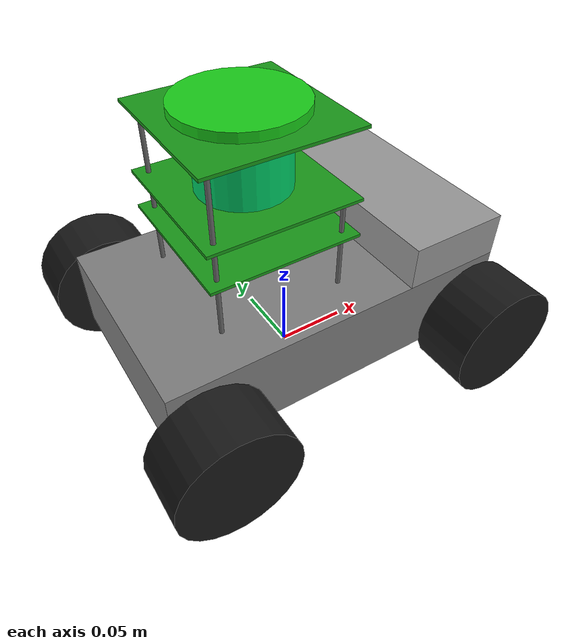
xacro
<?xml version="1.0"?>
<robot xmlns:xacro="http://www.ros.org/wiki/xacro" name="volt_runner_mecanum">

  <!-- ===== includes ===== -->
  <xacro:include filename="$(find volt_runner_description)/urdf/properties/mecanum_properties.urdf.xacro"/>
  <xacro:include filename="$(find volt_runner_description)/urdf/mech/base.urdf.xacro"/>
  <xacro:include filename="$(find volt_runner_description)/urdf/mech/wheel.urdf.xacro"/>
  <xacro:include filename="$(find volt_runner_description)/urdf/sensors/laser.urdf.xacro"/>
  <xacro:include filename="$(find volt_runner_description)/urdf/sensors/sender.urdf.xacro"/>
  <xacro:include filename="$(find volt_runner_description)/urdf/sensors/plugins.urdf.xacro"/>
  <xacro:include filename="$(find volt_runner_description)/urdf/controllers/omni_drive.urdf.xacro"/>

  <!-- ====== 라이다 전면 박스 (기존 그대로 유지) ====== -->
  <xacro:property name="front_box_len" value="0.07"/>
  <xacro:property name="front_box_wid" value="0.145"/>
  <xacro:property name="front_box_hei" value="0.03"/>
  <xacro:property name="front_box_cx"  value="${ base_length/2.0 - front_box_len/2.0 }"/>
  <xacro:property name="front_box_cz"  value="${ base_height/2.0 + front_box_hei/2.0 }"/>

  <joint name="front_box_joint" type="fixed">
    <parent link="base_link"/>
    <child link="front_box_link"/>
    <origin xyz="${front_box_cx} 0 ${front_box_cz}" rpy="0 0 0"/>
  </joint>

  <link name="front_box_link">
    <visual>
      <geometry>
        <box size="${front_box_len} ${front_box_wid} ${front_box_hei}"/>
      </geometry>
      <material name="FrontBoxGrey">
        <color rgba="0.6 0.6 0.6 1"/>
      </material>
    </visual>
    <inertial>
      <mass value="0.1"/>
      <inertia ixx="0.001" ixy="0" ixz="0"
               iyy="0.001" iyz="0" izz="0.001"/>
    </inertial>
  </link>

  <!-- ====== 바디 / 휠 (joint 이름 원래대로) ====== -->
  <xacro:base
    length="${base_length}"
    width="${base_width}"
    height="${base_height}"
    mass="${base_mass}"
    wheel_radius="${wheel_radius}"
    mesh_file=""/>

  <xacro:mecanum_wheel name="front_left"  parent="base_link"
      radius="${wheel_radius}" width="${wheel_width}" mass="${wheel_mass}"
      pos_x="${front_wheel_x}" pos_y="${ wheel_center_y_abs}" pos_z="${base_height/2 - wheel_radius}"/>

  <xacro:mecanum_wheel name="front_right" parent="base_link"
      radius="${wheel_radius}" width="${wheel_width}" mass="${wheel_mass}"
      pos_x="${front_wheel_x}" pos_y="${-wheel_center_y_abs}" pos_z="${base_height/2 - wheel_radius}"/>

  <xacro:mecanum_wheel name="rear_left"   parent="base_link"
      radius="${wheel_radius}" width="${wheel_width}" mass="${wheel_mass}"
      pos_x="${rear_wheel_x}"  pos_y="${ wheel_center_y_abs}" pos_z="${base_height/2 - wheel_radius}"/>

  <xacro:mecanum_wheel name="rear_right"  parent="base_link"
      radius="${wheel_radius}" width="${wheel_width}" mass="${wheel_mass}"
      pos_x="${rear_wheel_x}"  pos_y="${-wheel_center_y_abs}" pos_z="${base_height/2 - wheel_radius}"/>

  <!-- ====== 3층 캐빈 스택 ====== -->
  <xacro:property name="table_len" value="0.10"/>
  <xacro:property name="table_wid" value="0.10"/>
  <xacro:property name="table_thk" value="0.002"/>
  <xacro:property name="leg_rad"   value="0.0015"/>

  <!-- h1: base 상판에서 1층 테이블 상판까지 4cm (유지) -->
  <xacro:property name="h1" value="0.040"/>
  <!-- h2: 1층 상판에서 2층 상판까지 2.5cm (유지) -->
  <xacro:property name="h2" value="0.025"/>
  <!-- h3: 2층 상판에서 3층 상판까지 (기존 6cm → 4cm로 살짝 낮춤) -->
  <xacro:property name="h3" value="0.045"/>

  <!-- 스택의 XY 위치 (기존 rear table 위치) -->
  <xacro:property name="stack_x" value="${ -base_length/2.0 + 0.042 + table_len/2.0 }"/>
  <xacro:property name="stack_y" value="0.0"/>

  <!-- 다리 생성 매크로 -->
  <xacro:macro name="mk_leg" params="name parent xyz len">
    <joint name="${name}_j" type="fixed">
      <parent link="${parent}"/>
      <child  link="${name}_l"/>
      <origin xyz="${xyz}" rpy="0 0 0"/>
    </joint>
    <link name="${name}_l">
      <visual>
        <geometry>
          <cylinder radius="${leg_rad}" length="${len}"/>
        </geometry>
        <material name="LegGray">
          <color rgba="0.4 0.4 0.4 1"/>
        </material>
      </visual>
      <inertial>
        <mass value="0.005"/>
        <inertia ixx="1e-5" ixy="0" ixz="0"
                 iyy="1e-5" iyz="0" izz="1e-5"/>
      </inertial>
    </link>
  </xacro:macro>

  <!-- ===== 1층 캐빈 (table_1) : base 상판에서 +4cm ===== -->
  <joint name="table_1_joint" type="fixed">
    <parent link="base_link"/>
    <child  link="table_1_link"/>
    <origin xyz="${stack_x} ${stack_y} ${base_height/2.0 + h1 - table_thk/2.0}" rpy="0 0 0"/>
  </joint>

  <link name="table_1_link">
    <visual>
      <geometry>
        <box size="${table_len} ${table_wid} ${table_thk}"/>
      </geometry>
      <material name="TableGreen">
        <color rgba="0.1 0.6 0.1 1"/>
      </material>
    </visual>
    <inertial>
      <mass value="0.05"/>
      <inertia ixx="1e-4" ixy="0" ixz="0"
               iyy="1e-4" iyz="0" izz="1e-4"/>
    </inertial>
  </link>

  <xacro:property name="leg1_len" value="${h1 - table_thk}"/>
  <xacro:property name="leg1_z"   value="${base_height/2.0 + leg1_len/2.0}"/>
  <xacro:property name="ldx"      value="${table_len/2.0 - 0.008}"/>
  <xacro:property name="ldy"      value="${table_wid/2.0 - 0.008}"/>

  <!-- 1층 캐빈 다리 4개 (base_link 기준) -->
  <xacro:mk_leg name="leg1_fl" parent="base_link"
                xyz="${stack_x + ldx} ${stack_y + ldy} ${leg1_z}"
                len="${leg1_len}"/>
  <xacro:mk_leg name="leg1_fr" parent="base_link"
                xyz="${stack_x + ldx} ${stack_y - ldy} ${leg1_z}"
                len="${leg1_len}"/>
  <xacro:mk_leg name="leg1_rl" parent="base_link"
                xyz="${stack_x - ldx} ${stack_y + ldy} ${leg1_z}"
                len="${leg1_len}"/>
  <xacro:mk_leg name="leg1_rr" parent="base_link"
                xyz="${stack_x - ldx} ${stack_y - ldy} ${leg1_z}"
                len="${leg1_len}"/>

  <!-- ===== 2층 캐빈 (table_2) : 1층에서 +2.5cm, 이 위에 LiDAR ===== -->
  <joint name="table_2_joint" type="fixed">
    <parent link="table_1_link"/>
    <child  link="table_2_link"/>
    <origin xyz="0 0 ${h2}" rpy="0 0 0"/>
  </joint>

  <link name="table_2_link">
    <visual>
      <geometry>
        <box size="${table_len} ${table_wid} ${table_thk}"/>
      </geometry>
      <material name="TableGreen"/>
    </visual>
    <inertial>
      <mass value="0.05"/>
      <inertia ixx="1e-4" ixy="0" ixz="0"
               iyy="1e-4" iyz="0" izz="1e-4"/>
    </inertial>
  </link>

  <xacro:property name="leg2_len" value="${h2 - table_thk}"/>

  <!-- 2층 캐빈 다리 4개 (1층 기준) -->
  <xacro:mk_leg name="leg2_fl" parent="table_1_link"
                xyz="${ldx} ${ldy} ${h2/2.0}"
                len="${leg2_len}"/>
  <xacro:mk_leg name="leg2_fr" parent="table_1_link"
                xyz="${ldx} ${-ldy} ${h2/2.0}"
                len="${leg2_len}"/>
  <xacro:mk_leg name="leg2_rl" parent="table_1_link"
                xyz="${-ldx} ${ldy} ${h2/2.0}"
                len="${leg2_len}"/>
  <xacro:mk_leg name="leg2_rr" parent="table_1_link"
                xyz="${-ldx} ${-ldy} ${h2/2.0}"
                len="${leg2_len}"/>

  <!-- ===== LiDAR: 2층 캐빈 위 (높이 설정 그대로 유지) ===== -->
  <xacro:laser_2d_g6 frame="base_scan"
                     topic="/scan"
                     rate="10"
                     parent="table_2_link">
    <origin xyz="0 0 ${table_thk/2.0 + 0.025}" rpy="0 0 0"/>
  </xacro:laser_2d_g6>

  <!-- ===== 3층 캐빈 (table_3) : 2층에서 +4cm, 뒤 기둥 2개 + sender ===== -->
  <joint name="table_3_joint" type="fixed">
    <parent link="table_2_link"/>
    <child  link="table_3_link"/>
    <origin xyz="0 0 ${h3}" rpy="0 0 0"/>
  </joint>

  <link name="table_3_link">
    <visual>
      <geometry>
        <box size="${table_len} ${table_wid} ${table_thk}"/>
      </geometry>
      <material name="TableGreen"/>
    </visual>
    <inertial>
      <mass value="0.05"/>
      <inertia ixx="1e-4" ixy="0" ixz="0"
               iyy="1e-4" iyz="0" izz="1e-4"/>
    </inertial>
  </link>

  <xacro:property name="leg3_len" value="${h3 - table_thk}"/>

  <!-- 3층 캐빈 다리: 뒤쪽 2개만 (lidar 뒤 기둥) -->
  <xacro:mk_leg name="leg3_rl" parent="table_2_link"
                xyz="${-ldx} ${ldy} ${h3/2.0}"
                len="${leg3_len}"/>
  <xacro:mk_leg name="leg3_rr" parent="table_2_link"
                xyz="${-ldx} ${-ldy} ${h3/2.0}"
                len="${leg3_len}"/>

  <!-- ===== sender: 3층 캐빈 위 (rear_sender_* 이름 유지) ===== -->
  <xacro:sender_sensor
      parent="table_3_link"
      prefix="rear_sender"
      xyz_origin="0 0 ${table_thk/2.0 + 0.005}"
      rpy_origin="0 0 0"/>

  <!-- ====== 구동 플러그인 (기존 그대로) ====== -->
  <xacro:omni_drive_controller
        wheel_separation="${wheel_base}"
        wheel_base="${2.0 * wheel_center_y_abs}"
        wheel_radius="${wheel_radius}"/>

</robot>

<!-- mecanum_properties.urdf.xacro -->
<robot xmlns:xacro="http://www.ros.org/wiki/xacro">

  <xacro:property name="base_length" value="0.24"/>
  <xacro:property name="base_width"  value="0.145"/>
  <xacro:property name="base_height" value="0.056"/>
  <xacro:property name="base_mass"   value="6.0"/>

  <xacro:property name="wheel_radius" value="0.04"/>
  <xacro:property name="wheel_width"  value="0.04"/>
  <xacro:property name="wheel_mass"   value="0.3"/>

  <xacro:property name="wheel_gap" value="0.004"/>
  <xacro:property name="base_link_z" value="${wheel_radius + base_height/2.0}"/>
  <xacro:property name="wheel_center_y_abs" value="${base_width/2.0 + wheel_gap + wheel_width/2.0}"/>
  <xacro:property name="front_wheel_x" value="${ base_length/2.0 - 0.02 }"/>
  <xacro:property name="rear_wheel_x"  value="${-base_length/2.0 + 0.02 }"/>
  <xacro:property name="wheel_base" value="${front_wheel_x - rear_wheel_x}"/>

  <xacro:property name="base_mesh_file"  value=""/>
  <xacro:property name="wheel_mesh_file" value=""/>

  <xacro:property name="platform_length" value="0.20"/>
  <xacro:property name="platform_width"  value="0.12"/>
  <xacro:property name="platform_thickness" value="0.01"/>

  <xacro:property name="platform_center_z" value="0.07"/>

  <xacro:property name="laser_frame" value="base_scan"/>
  <xacro:property name="laser_topic" value="/scan"/>
  <xacro:property name="laser_rate"  value="20"/>

</robot>

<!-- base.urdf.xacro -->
<robot xmlns:xacro="http://ros.org/wiki/xacro">
  <!-- base 박스: 총 높이 = 2*wheel_radius 가 되도록 자동 오프셋 -->
  <xacro:macro name="base"
               params="length width height mass wheel_radius mesh_file:=''">

    <link name="base_footprint"/>

    <link name="base_link">
      <visual>
        <origin xyz="0 0 0" rpy="0 0 0"/>
        <geometry>
          <xacro:if value="${mesh_file == ''}">
            <box size="${length} ${width} ${height}"/>
          </xacro:if>
          <xacro:unless value="${mesh_file == ''}">
            <mesh filename="${mesh_file}" scale="1 1 1"/>
          </xacro:unless>
        </geometry>
        <material name="grey"><color rgba="0.5 0.5 0.5 1"/></material>
      </visual>

      <collision>
        <origin xyz="0 0 0" rpy="0 0 0"/>
        <geometry><box size="${length} ${width} ${height}"/></geometry>
      </collision>

      <inertial>
        <origin xyz="0 0 0" rpy="0 0 0"/>
        <mass value="${mass}"/>
        <inertia
          ixx="${(mass/12.0) * (width*width + height*height)}"
          ixy="0" ixz="0"
          iyy="${(mass/12.0) * (length*length + height*height)}"
          iyz="0"
          izz="${(mass/12.0) * (length*length + width*width)}"/>
      </inertial>
    </link>

    <!-- 중심 높이 = 2R - H/2  → 바닥 = 2R - H, 윗면 = 2R -->
    <joint name="base_to_footprint" type="fixed">
      <parent link="base_footprint"/>
      <child  link="base_link"/>
      <origin xyz="0 0 ${2*wheel_radius - height/2.0}" rpy="0 0 0"/>
    </joint>
  </xacro:macro>
</robot>

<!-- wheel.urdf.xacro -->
<robot xmlns:xacro="http://ros.org/wiki/xacro" xmlns:gz="http://gazebosim.org/schema">
  <xacro:macro name="mecanum_wheel"
               params="name parent:=base_link radius:=0.04 width:=0.04 mass:=0.3
                       pos_x:=0.0 pos_y:=0.0 pos_z:=${radius} mesh_file:=''">

    <link name="${name}_wheel">
      <visual>
        <origin xyz="0 0 0" rpy="1.57079632679 0 0"/>
        <geometry>
          <xacro:if value="${mesh_file == ''}">
            <cylinder radius="${radius}" length="${width}"/>
          </xacro:if>
          <xacro:unless value="${mesh_file == ''}">
            <mesh filename="${mesh_file}" scale="1 1 1"/>
          </xacro:unless>
        </geometry>
        <material name="${name}_rubber"><color rgba="0.1 0.1 0.1 1"/></material>
      </visual>

      <collision>
        <origin xyz="0 0 0" rpy="1.57079632679 0 0"/>
        <geometry><cylinder radius="${radius}" length="${width}"/></geometry>

        </collision>

      <inertial>
        <origin xyz="0 0 0" rpy="0 0 0"/>
        <mass value="${mass}"/>
        <inertia
          ixx="${0.5*mass*radius*radius}"
          ixy="0" ixz="0"
          iyy="${(1.0/12.0)*mass*(3*radius*radius + width*width)}"
          iyz="0"
          izz="${0.5*mass*radius*radius}"/>
      </inertial>
    </link>

    <gazebo reference="${name}_wheel">
      <collision>
        <surface>
          <friction>
            <ode>
              <mu>1.5</mu>   <mu2>0.7</mu2>  <kp>200000.0</kp>
              <kd>5000.0</kd>

              <xacro:if value="${name == 'front_left'}">
                <fdir1 gz:expressed_in="base_footprint">1 -1 0</fdir1>
              </xacro:if>
              <xacro:if value="${name == 'rear_left'}">
                <fdir1 gz:expressed_in="base_footprint">1 1 0</fdir1>
              </xacro:if>
              <xacro:if value="${name == 'front_right'}">
                <fdir1 gz:expressed_in="base_footprint">1 1 0</fdir1>
              </xacro:if>
              <xacro:if value="${name == 'rear_right'}">
                <fdir1 gz:expressed_in="base_footprint">1 -1 0</fdir1>
              </xacro:if>
            </ode>
          </friction>
        </surface>
      </collision>
    </gazebo>

    <joint name="${name}_wheel_joint" type="continuous">
      <parent link="${parent}"/>
      <child  link="${name}_wheel"/> <origin xyz="${pos_x} ${pos_y} ${pos_z}" rpy="0 0 0"/>
      <axis xyz="0 1 0"/>
      <limit effort="20.0" velocity="100.0"/>
      <dynamics damping="0.0" friction="0.0"/>
    </joint>
  </xacro:macro>
</robot>

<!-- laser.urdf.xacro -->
<robot xmlns:xacro="http://www.ros.org/wiki/xacro">

  <xacro:macro name="laser_2d_g6"
               params="frame:=${laser_frame}
                       topic:=${laser_topic}
                       rate:=${laser_rate}
                       parent:=base_link
                       min_angle:=${-3.141592653589793}
                       max_angle:=${3.141592653589793}
                       min_range:=0.20
                       max_range:=12.0
                       samples:=1080
                       *origin_block">

    <link name="${frame}">
      <visual>
        <origin xyz="0 0 0" rpy="0 0 0"/>
        <geometry>
          <cylinder radius="0.03" length="0.05"/>
        </geometry>
        <material name="green">
          <color rgba="0.0 0.8 0.4 1.0"/>
        </material>
      </visual>
      <collision>
        <origin xyz="0 0 0" rpy="0 0 0"/>
        <geometry>
          <cylinder radius="0.03" length="0.05"/>
        </geometry>
      </collision>
      <inertial>
        <origin xyz="0 0 0" rpy="0 0 0"/>
        <mass value="0.15"/>
        <inertia ixx="1e-4" ixy="0" ixz="0"
                 iyy="1e-4" iyz="0" izz="1e-4"/>
      </inertial>
    </link>

    <joint name="${frame}_joint" type="fixed">
      <parent link="${parent}"/>
      <child  link="${frame}"/>
      <xacro:insert_block name="origin_block"/>
    </joint>

    <gazebo reference="${frame}">
      <sensor name="${frame}" type="gpu_lidar">
        <pose>0 0 0 0 0 0</pose>
        <topic>${topic}</topic>
        <update_rate>${rate}</update_rate>
        <always_on>1</always_on>
        <visualize>1</visualize>
        <frame_id>base_scan</frame_id>

        <ray>
          <scan>
            <horizontal>
              <samples>${samples}</samples>
              <resolution>1</resolution>
              <min_angle>${min_angle}</min_angle>
              <max_angle>${max_angle}</max_angle>
            </horizontal>
            <vertical>
              <samples>1</samples>
              <resolution>1</resolution>
              <min_angle>0.0</min_angle>
              <max_angle>0.0</max_angle>
            </vertical>
          </scan>
          <range>
            <min>${min_range}</min>
            <max>${max_range}</max>
            <resolution>0.01</resolution>
          </range>
        </ray>

        </sensor>
    </gazebo>

  </xacro:macro>
</robot>

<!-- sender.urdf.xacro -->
<robot xmlns:xacro="http://www.ros.org/wiki/xacro" name="sender_sensor">

  <material name="SensorGreen">
    <color rgba="0.1 0.8 0.1 1.0"/>
  </material>

  <xacro:macro name="sender_sensor" params="parent prefix xyz_origin rpy_origin">

    <joint name="${prefix}_joint" type="fixed">
      <parent link="${parent}"/>
      <child link="${prefix}_link"/>
      <origin xyz="${xyz_origin}" rpy="${rpy_origin}"/>
    </joint>

    <link name="${prefix}_link">
      <visual>
        <geometry>
          <cylinder radius="0.04" length="0.006"/>
        </geometry>
        <material name="SensorGreen"/>
      </visual>
      <collision>
        <geometry>
          <cylinder radius="0.04" length="0.006"/>
        </geometry>
      </collision>
      <inertial>
        <mass value="0.05"/>
        <inertia ixx="0.0001" ixy="0" ixz="0" iyy="0.0001" iyz="0" izz="0.0001"/>
      </inertial>
    </link>
  </xacro:macro>

</robot>
